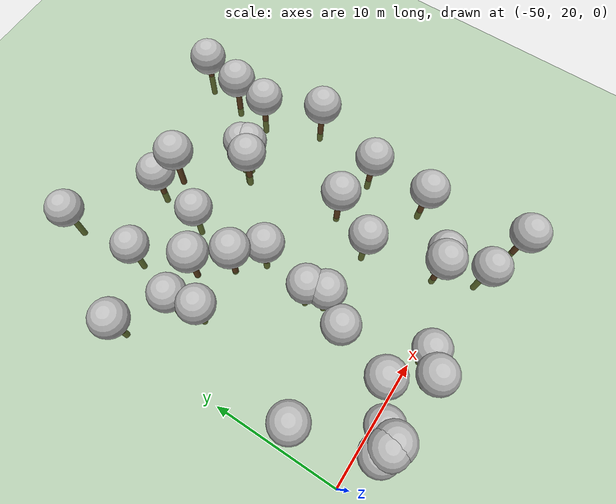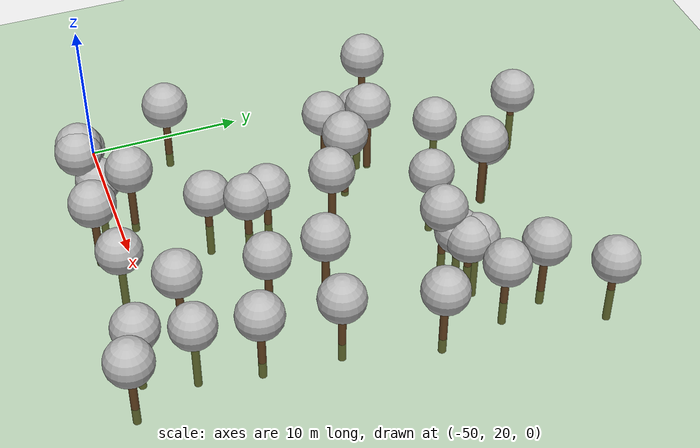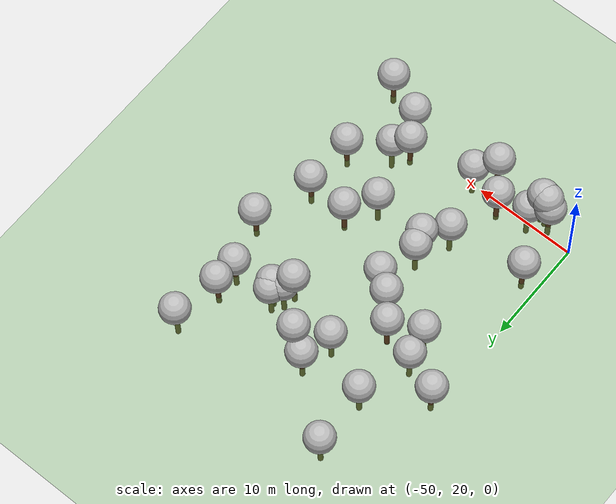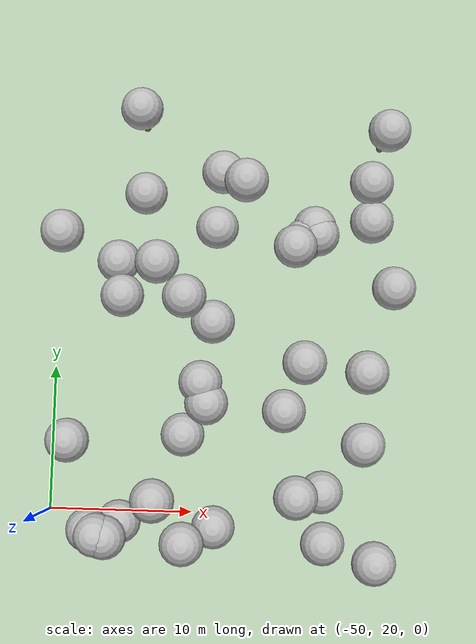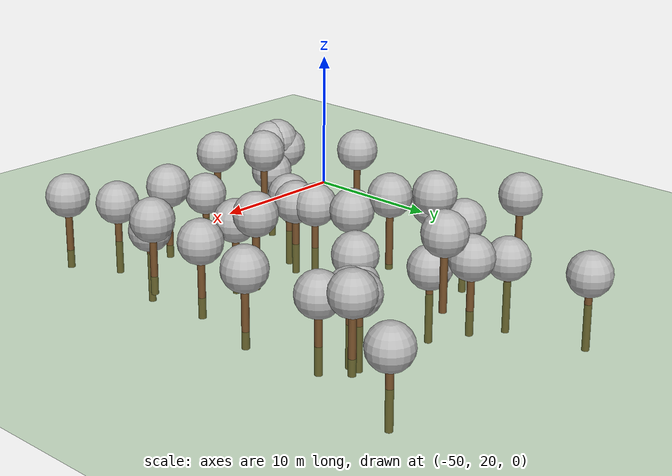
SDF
<sdf version="1.5">
 <world name="default">
  <model name="tree_simple493">
   <static>1</static>
   <link name="link">
    <pose>0 0 0.1 0 -0 0</pose>
    <collision name="collision_trunk">
     <pose>0 0 2 0 -0 0</pose>
     <geometry><cylinder><radius>0.25</radius><length>4</length></cylinder></geometry>
    </collision>
    <collision name="collision_treetop">
     <pose>0 0 5.2 0 -0 0</pose>
     <geometry><sphere><radius>1.5</radius></sphere></geometry>
    </collision>
    <visual name="trunk">
     <pose>0 0 2 0 -0 0</pose>
     <geometry><cylinder><radius>0.25</radius><length>4</length></cylinder></geometry>
     <material>
      <script>
       <uri>model://tree_simple/scripts</uri>
       <uri>model://tree_simple/materials/textures</uri>
       <name>TreeSimple/Trunk</name>
      </script>
     </material>
    </visual>
    <visual name="treetop">
     <pose>0 0 5.2 0 -0 0</pose>
     <geometry><sphere><radius>1.5</radius></sphere></geometry>
     <material>
      <script>
       <uri>model://tree_simple/scripts</uri>
       <uri>model://tree_simple/materials/textures</uri>
       <name>TreeSimple/Treetop</name>
      </script>
     </material>
    </visual>
   </link>
   <pose>-30.9686104206 18.3944298941 -2.510078814309051 0 -0 0</pose>
  </model>
  <model name="tree_simple489">
   <static>1</static>
   <link name="link">
    <pose>0 0 0.1 0 -0 0</pose>
    <collision name="collision_trunk">
     <pose>0 0 2 0 -0 0</pose>
     <geometry><cylinder><radius>0.25</radius><length>4</length></cylinder></geometry>
    </collision>
    <collision name="collision_treetop">
     <pose>0 0 5.2 0 -0 0</pose>
     <geometry><sphere><radius>1.5</radius></sphere></geometry>
    </collision>
    <visual name="trunk">
     <pose>0 0 2 0 -0 0</pose>
     <geometry><cylinder><radius>0.25</radius><length>4</length></cylinder></geometry>
     <material>
      <script>
       <uri>model://tree_simple/scripts</uri>
       <uri>model://tree_simple/materials/textures</uri>
       <name>TreeSimple/Trunk</name>
      </script>
     </material>
    </visual>
    <visual name="treetop">
     <pose>0 0 5.2 0 -0 0</pose>
     <geometry><sphere><radius>1.5</radius></sphere></geometry>
     <material>
      <script>
       <uri>model://tree_simple/scripts</uri>
       <uri>model://tree_simple/materials/textures</uri>
       <name>TreeSimple/Treetop</name>
      </script>
     </material>
    </visual>
   </link>
   <pose>-32.6634579524 39.3278172931 -3.138873466383935 0 -0 0</pose>
  </model>
  <model name="tree_simple482">
   <static>1</static>
   <link name="link">
    <pose>0 0 0.1 0 -0 0</pose>
    <collision name="collision_trunk">
     <pose>0 0 2 0 -0 0</pose>
     <geometry><cylinder><radius>0.25</radius><length>4</length></cylinder></geometry>
    </collision>
    <collision name="collision_treetop">
     <pose>0 0 5.2 0 -0 0</pose>
     <geometry><sphere><radius>1.5</radius></sphere></geometry>
    </collision>
    <visual name="trunk">
     <pose>0 0 2 0 -0 0</pose>
     <geometry><cylinder><radius>0.25</radius><length>4</length></cylinder></geometry>
     <material>
      <script>
       <uri>model://tree_simple/scripts</uri>
       <uri>model://tree_simple/materials/textures</uri>
       <name>TreeSimple/Trunk</name>
      </script>
     </material>
    </visual>
    <visual name="treetop">
     <pose>0 0 5.2 0 -0 0</pose>
     <geometry><sphere><radius>1.5</radius></sphere></geometry>
     <material>
      <script>
       <uri>model://tree_simple/scripts</uri>
       <uri>model://tree_simple/materials/textures</uri>
       <name>TreeSimple/Treetop</name>
      </script>
     </material>
    </visual>
   </link>
   <pose>-31.7137183406 39.6850484597 -3.1111508047833083 0 -0 0</pose>
  </model>
  <model name="tree_simple476">
   <static>1</static>
   <link name="link">
    <pose>0 0 0.1 0 -0 0</pose>
    <collision name="collision_trunk">
     <pose>0 0 2 0 -0 0</pose>
     <geometry><cylinder><radius>0.25</radius><length>4</length></cylinder></geometry>
    </collision>
    <collision name="collision_treetop">
     <pose>0 0 5.2 0 -0 0</pose>
     <geometry><sphere><radius>1.5</radius></sphere></geometry>
    </collision>
    <visual name="trunk">
     <pose>0 0 2 0 -0 0</pose>
     <geometry><cylinder><radius>0.25</radius><length>4</length></cylinder></geometry>
     <material>
      <script>
       <uri>model://tree_simple/scripts</uri>
       <uri>model://tree_simple/materials/textures</uri>
       <name>TreeSimple/Trunk</name>
      </script>
     </material>
    </visual>
    <visual name="treetop">
     <pose>0 0 5.2 0 -0 0</pose>
     <geometry><sphere><radius>1.5</radius></sphere></geometry>
     <material>
      <script>
       <uri>model://tree_simple/scripts</uri>
       <uri>model://tree_simple/materials/textures</uri>
       <name>TreeSimple/Treetop</name>
      </script>
     </material>
    </visual>
   </link>
   <pose>-40.490555579 18.243153787 -1.0676930194325198 0 -0 0</pose>
  </model>
  <model name="tree_simple474">
   <static>1</static>
   <link name="link">
    <pose>0 0 0.1 0 -0 0</pose>
    <collision name="collision_trunk">
     <pose>0 0 2 0 -0 0</pose>
     <geometry><cylinder><radius>0.25</radius><length>4</length></cylinder></geometry>
    </collision>
    <collision name="collision_treetop">
     <pose>0 0 5.2 0 -0 0</pose>
     <geometry><sphere><radius>1.5</radius></sphere></geometry>
    </collision>
    <visual name="trunk">
     <pose>0 0 2 0 -0 0</pose>
     <geometry><cylinder><radius>0.25</radius><length>4</length></cylinder></geometry>
     <material>
      <script>
       <uri>model://tree_simple/scripts</uri>
       <uri>model://tree_simple/materials/textures</uri>
       <name>TreeSimple/Trunk</name>
      </script>
     </material>
    </visual>
    <visual name="treetop">
     <pose>0 0 5.2 0 -0 0</pose>
     <geometry><sphere><radius>1.5</radius></sphere></geometry>
     <material>
      <script>
       <uri>model://tree_simple/scripts</uri>
       <uri>model://tree_simple/materials/textures</uri>
       <name>TreeSimple/Treetop</name>
      </script>
     </material>
    </visual>
   </link>
   <pose>-45.5609359524 37.3889677829 -2.8404649783358575 0 -0 0</pose>
  </model>
  <model name="tree_simple470">
   <static>1</static>
   <link name="link">
    <pose>0 0 0.1 0 -0 0</pose>
    <collision name="collision_trunk">
     <pose>0 0 2 0 -0 0</pose>
     <geometry><cylinder><radius>0.25</radius><length>4</length></cylinder></geometry>
    </collision>
    <collision name="collision_treetop">
     <pose>0 0 5.2 0 -0 0</pose>
     <geometry><sphere><radius>1.5</radius></sphere></geometry>
    </collision>
    <visual name="trunk">
     <pose>0 0 2 0 -0 0</pose>
     <geometry><cylinder><radius>0.25</radius><length>4</length></cylinder></geometry>
     <material>
      <script>
       <uri>model://tree_simple/scripts</uri>
       <uri>model://tree_simple/materials/textures</uri>
       <name>TreeSimple/Trunk</name>
      </script>
     </material>
    </visual>
    <visual name="treetop">
     <pose>0 0 5.2 0 -0 0</pose>
     <geometry><sphere><radius>1.5</radius></sphere></geometry>
     <material>
      <script>
       <uri>model://tree_simple/scripts</uri>
       <uri>model://tree_simple/materials/textures</uri>
       <name>TreeSimple/Treetop</name>
      </script>
     </material>
    </visual>
   </link>
   <pose>-42.5418923399 21.0598314505 -0.8151204117895585 0 -0 0</pose>
  </model>
  <model name="tree_simple467">
   <static>1</static>
   <link name="link">
    <pose>0 0 0.1 0 -0 0</pose>
    <collision name="collision_trunk">
     <pose>0 0 2 0 -0 0</pose>
     <geometry><cylinder><radius>0.25</radius><length>4</length></cylinder></geometry>
    </collision>
    <collision name="collision_treetop">
     <pose>0 0 5.2 0 -0 0</pose>
     <geometry><sphere><radius>1.5</radius></sphere></geometry>
    </collision>
    <visual name="trunk">
     <pose>0 0 2 0 -0 0</pose>
     <geometry><cylinder><radius>0.25</radius><length>4</length></cylinder></geometry>
     <material>
      <script>
       <uri>model://tree_simple/scripts</uri>
       <uri>model://tree_simple/materials/textures</uri>
       <name>TreeSimple/Trunk</name>
      </script>
     </material>
    </visual>
    <visual name="treetop">
     <pose>0 0 5.2 0 -0 0</pose>
     <geometry><sphere><radius>1.5</radius></sphere></geometry>
     <material>
      <script>
       <uri>model://tree_simple/scripts</uri>
       <uri>model://tree_simple/materials/textures</uri>
       <name>TreeSimple/Treetop</name>
      </script>
     </material>
    </visual>
   </link>
   <pose>-38.4435588212 19.1731926836 -3.536207887272826 0 -0 0</pose>
  </model>
  <model name="tree_simple462">
   <static>1</static>
   <link name="link">
    <pose>0 0 0.1 0 -0 0</pose>
    <collision name="collision_trunk">
     <pose>0 0 2 0 -0 0</pose>
     <geometry><cylinder><radius>0.25</radius><length>4</length></cylinder></geometry>
    </collision>
    <collision name="collision_treetop">
     <pose>0 0 5.2 0 -0 0</pose>
     <geometry><sphere><radius>1.5</radius></sphere></geometry>
    </collision>
    <visual name="trunk">
     <pose>0 0 2 0 -0 0</pose>
     <geometry><cylinder><radius>0.25</radius><length>4</length></cylinder></geometry>
     <material>
      <script>
       <uri>model://tree_simple/scripts</uri>
       <uri>model://tree_simple/materials/textures</uri>
       <name>TreeSimple/Trunk</name>
      </script>
     </material>
    </visual>
    <visual name="treetop">
     <pose>0 0 5.2 0 -0 0</pose>
     <geometry><sphere><radius>1.5</radius></sphere></geometry>
     <material>
      <script>
       <uri>model://tree_simple/scripts</uri>
       <uri>model://tree_simple/materials/textures</uri>
       <name>TreeSimple/Treetop</name>
      </script>
     </material>
    </visual>
   </link>
   <pose>-33.3479265171 38.6010387018 -1.5706608682224137 0 -0 0</pose>
  </model>
  <model name="tree_simple440">
   <static>1</static>
   <link name="link">
    <pose>0 0 0.1 0 -0 0</pose>
    <collision name="collision_trunk">
     <pose>0 0 2 0 -0 0</pose>
     <geometry><cylinder><radius>0.25</radius><length>4</length></cylinder></geometry>
    </collision>
    <collision name="collision_treetop">
     <pose>0 0 5.2 0 -0 0</pose>
     <geometry><sphere><radius>1.5</radius></sphere></geometry>
    </collision>
    <visual name="trunk">
     <pose>0 0 2 0 -0 0</pose>
     <geometry><cylinder><radius>0.25</radius><length>4</length></cylinder></geometry>
     <material>
      <script>
       <uri>model://tree_simple/scripts</uri>
       <uri>model://tree_simple/materials/textures</uri>
       <name>TreeSimple/Trunk</name>
      </script>
     </material>
    </visual>
    <visual name="treetop">
     <pose>0 0 5.2 0 -0 0</pose>
     <geometry><sphere><radius>1.5</radius></sphere></geometry>
     <material>
      <script>
       <uri>model://tree_simple/scripts</uri>
       <uri>model://tree_simple/materials/textures</uri>
       <name>TreeSimple/Treetop</name>
      </script>
     </material>
    </visual>
   </link>
   <pose>-31.0139863597 21.7755311208 -3.6890715528366615 0 -0 0</pose>
  </model>
  <model name="tree_simple420">
   <static>1</static>
   <link name="link">
    <pose>0 0 0.1 0 -0 0</pose>
    <collision name="collision_trunk">
     <pose>0 0 2 0 -0 0</pose>
     <geometry><cylinder><radius>0.25</radius><length>4</length></cylinder></geometry>
    </collision>
    <collision name="collision_treetop">
     <pose>0 0 5.2 0 -0 0</pose>
     <geometry><sphere><radius>1.5</radius></sphere></geometry>
    </collision>
    <visual name="trunk">
     <pose>0 0 2 0 -0 0</pose>
     <geometry><cylinder><radius>0.25</radius><length>4</length></cylinder></geometry>
     <material>
      <script>
       <uri>model://tree_simple/scripts</uri>
       <uri>model://tree_simple/materials/textures</uri>
       <name>TreeSimple/Trunk</name>
      </script>
     </material>
    </visual>
    <visual name="treetop">
     <pose>0 0 5.2 0 -0 0</pose>
     <geometry><sphere><radius>1.5</radius></sphere></geometry>
     <material>
      <script>
       <uri>model://tree_simple/scripts</uri>
       <uri>model://tree_simple/materials/textures</uri>
       <name>TreeSimple/Treetop</name>
      </script>
     </material>
    </visual>
   </link>
   <pose>-46.8738530937 18.9140158148 -1.978129869869826 0 -0 0</pose>
  </model>
  <model name="tree_simple410">
   <static>1</static>
   <link name="link">
    <pose>0 0 0.1 0 -0 0</pose>
    <collision name="collision_trunk">
     <pose>0 0 2 0 -0 0</pose>
     <geometry><cylinder><radius>0.25</radius><length>4</length></cylinder></geometry>
    </collision>
    <collision name="collision_treetop">
     <pose>0 0 5.2 0 -0 0</pose>
     <geometry><sphere><radius>1.5</radius></sphere></geometry>
    </collision>
    <visual name="trunk">
     <pose>0 0 2 0 -0 0</pose>
     <geometry><cylinder><radius>0.25</radius><length>4</length></cylinder></geometry>
     <material>
      <script>
       <uri>model://tree_simple/scripts</uri>
       <uri>model://tree_simple/materials/textures</uri>
       <name>TreeSimple/Trunk</name>
      </script>
     </material>
    </visual>
    <visual name="treetop">
     <pose>0 0 5.2 0 -0 0</pose>
     <geometry><sphere><radius>1.5</radius></sphere></geometry>
     <material>
      <script>
       <uri>model://tree_simple/scripts</uri>
       <uri>model://tree_simple/materials/textures</uri>
       <name>TreeSimple/Treetop</name>
      </script>
     </material>
    </visual>
   </link>
   <pose>-31.9347087499 40.2537422087 -3.2331510362041413 0 -0 0</pose>
  </model>
  <model name="tree_simple358">
   <static>1</static>
   <link name="link">
    <pose>0 0 0.1 0 -0 0</pose>
    <collision name="collision_trunk">
     <pose>0 0 2 0 -0 0</pose>
     <geometry><cylinder><radius>0.25</radius><length>4</length></cylinder></geometry>
    </collision>
    <collision name="collision_treetop">
     <pose>0 0 5.2 0 -0 0</pose>
     <geometry><sphere><radius>1.5</radius></sphere></geometry>
    </collision>
    <visual name="trunk">
     <pose>0 0 2 0 -0 0</pose>
     <geometry><cylinder><radius>0.25</radius><length>4</length></cylinder></geometry>
     <material>
      <script>
       <uri>model://tree_simple/scripts</uri>
       <uri>model://tree_simple/materials/textures</uri>
       <name>TreeSimple/Trunk</name>
      </script>
     </material>
    </visual>
    <visual name="treetop">
     <pose>0 0 5.2 0 -0 0</pose>
     <geometry><sphere><radius>1.5</radius></sphere></geometry>
     <material>
      <script>
       <uri>model://tree_simple/scripts</uri>
       <uri>model://tree_simple/materials/textures</uri>
       <name>TreeSimple/Treetop</name>
      </script>
     </material>
    </visual>
   </link>
   <pose>-28.1059387966 40.529489556 -2.030022720326742 0 -0 0</pose>
  </model>
  <model name="tree_simple351">
   <static>1</static>
   <link name="link">
    <pose>0 0 0.1 0 -0 0</pose>
    <collision name="collision_trunk">
     <pose>0 0 2 0 -0 0</pose>
     <geometry><cylinder><radius>0.25</radius><length>4</length></cylinder></geometry>
    </collision>
    <collision name="collision_treetop">
     <pose>0 0 5.2 0 -0 0</pose>
     <geometry><sphere><radius>1.5</radius></sphere></geometry>
    </collision>
    <visual name="trunk">
     <pose>0 0 2 0 -0 0</pose>
     <geometry><cylinder><radius>0.25</radius><length>4</length></cylinder></geometry>
     <material>
      <script>
       <uri>model://tree_simple/scripts</uri>
       <uri>model://tree_simple/materials/textures</uri>
       <name>TreeSimple/Trunk</name>
      </script>
     </material>
    </visual>
    <visual name="treetop">
     <pose>0 0 5.2 0 -0 0</pose>
     <geometry><sphere><radius>1.5</radius></sphere></geometry>
     <material>
      <script>
       <uri>model://tree_simple/scripts</uri>
       <uri>model://tree_simple/materials/textures</uri>
       <name>TreeSimple/Treetop</name>
      </script>
     </material>
    </visual>
   </link>
   <pose>-28.4628783032 25.1782097003 -1.4134834269605965 0 -0 0</pose>
  </model>
  <model name="tree_simple336">
   <static>1</static>
   <link name="link">
    <pose>0 0 0.1 0 -0 0</pose>
    <collision name="collision_trunk">
     <pose>0 0 2 0 -0 0</pose>
     <geometry><cylinder><radius>0.25</radius><length>4</length></cylinder></geometry>
    </collision>
    <collision name="collision_treetop">
     <pose>0 0 5.2 0 -0 0</pose>
     <geometry><sphere><radius>1.5</radius></sphere></geometry>
    </collision>
    <visual name="trunk">
     <pose>0 0 2 0 -0 0</pose>
     <geometry><cylinder><radius>0.25</radius><length>4</length></cylinder></geometry>
     <material>
      <script>
       <uri>model://tree_simple/scripts</uri>
       <uri>model://tree_simple/materials/textures</uri>
       <name>TreeSimple/Trunk</name>
      </script>
     </material>
    </visual>
    <visual name="treetop">
     <pose>0 0 5.2 0 -0 0</pose>
     <geometry><sphere><radius>1.5</radius></sphere></geometry>
     <material>
      <script>
       <uri>model://tree_simple/scripts</uri>
       <uri>model://tree_simple/materials/textures</uri>
       <name>TreeSimple/Treetop</name>
      </script>
     </material>
    </visual>
   </link>
   <pose>-43.9020074738 42.4187815875 -3.774611735931237 0 -0 0</pose>
  </model>
  <model name="tree_simple331">
   <static>1</static>
   <link name="link">
    <pose>0 0 0.1 0 -0 0</pose>
    <collision name="collision_trunk">
     <pose>0 0 2 0 -0 0</pose>
     <geometry><cylinder><radius>0.25</radius><length>4</length></cylinder></geometry>
    </collision>
    <collision name="collision_treetop">
     <pose>0 0 5.2 0 -0 0</pose>
     <geometry><sphere><radius>1.5</radius></sphere></geometry>
    </collision>
    <visual name="trunk">
     <pose>0 0 2 0 -0 0</pose>
     <geometry><cylinder><radius>0.25</radius><length>4</length></cylinder></geometry>
     <material>
      <script>
       <uri>model://tree_simple/scripts</uri>
       <uri>model://tree_simple/materials/textures</uri>
       <name>TreeSimple/Trunk</name>
      </script>
     </material>
    </visual>
    <visual name="treetop">
     <pose>0 0 5.2 0 -0 0</pose>
     <geometry><sphere><radius>1.5</radius></sphere></geometry>
     <material>
      <script>
       <uri>model://tree_simple/scripts</uri>
       <uri>model://tree_simple/materials/textures</uri>
       <name>TreeSimple/Treetop</name>
      </script>
     </material>
    </visual>
   </link>
   <pose>-40.8341940448 34.8238319948 -0.49800030425219033 0 -0 0</pose>
  </model>
  <model name="tree_simple319">
   <static>1</static>
   <link name="link">
    <pose>0 0 0.1 0 -0 0</pose>
    <collision name="collision_trunk">
     <pose>0 0 2 0 -0 0</pose>
     <geometry><cylinder><radius>0.25</radius><length>4</length></cylinder></geometry>
    </collision>
    <collision name="collision_treetop">
     <pose>0 0 5.2 0 -0 0</pose>
     <geometry><sphere><radius>1.5</radius></sphere></geometry>
    </collision>
    <visual name="trunk">
     <pose>0 0 2 0 -0 0</pose>
     <geometry><cylinder><radius>0.25</radius><length>4</length></cylinder></geometry>
     <material>
      <script>
       <uri>model://tree_simple/scripts</uri>
       <uri>model://tree_simple/materials/textures</uri>
       <name>TreeSimple/Trunk</name>
      </script>
     </material>
    </visual>
    <visual name="treetop">
     <pose>0 0 5.2 0 -0 0</pose>
     <geometry><sphere><radius>1.5</radius></sphere></geometry>
     <material>
      <script>
       <uri>model://tree_simple/scripts</uri>
       <uri>model://tree_simple/materials/textures</uri>
       <name>TreeSimple/Treetop</name>
      </script>
     </material>
    </visual>
   </link>
   <pose>-33.8227496689 27.309967617 -2.3372359769945046 0 -0 0</pose>
  </model>
  <model name="tree_simple311">
   <static>1</static>
   <link name="link">
    <pose>0 0 0.1 0 -0 0</pose>
    <collision name="collision_trunk">
     <pose>0 0 2 0 -0 0</pose>
     <geometry><cylinder><radius>0.25</radius><length>4</length></cylinder></geometry>
    </collision>
    <collision name="collision_treetop">
     <pose>0 0 5.2 0 -0 0</pose>
     <geometry><sphere><radius>1.5</radius></sphere></geometry>
    </collision>
    <visual name="trunk">
     <pose>0 0 2 0 -0 0</pose>
     <geometry><cylinder><radius>0.25</radius><length>4</length></cylinder></geometry>
     <material>
      <script>
       <uri>model://tree_simple/scripts</uri>
       <uri>model://tree_simple/materials/textures</uri>
       <name>TreeSimple/Trunk</name>
      </script>
     </material>
    </visual>
    <visual name="treetop">
     <pose>0 0 5.2 0 -0 0</pose>
     <geometry><sphere><radius>1.5</radius></sphere></geometry>
     <material>
      <script>
       <uri>model://tree_simple/scripts</uri>
       <uri>model://tree_simple/materials/textures</uri>
       <name>TreeSimple/Treetop</name>
      </script>
     </material>
    </visual>
   </link>
   <pose>-49.3857645653 39.1709388153 -1.503829311496968 0 -0 0</pose>
  </model>
  <model name="tree_simple291">
   <static>1</static>
   <link name="link">
    <pose>0 0 0.1 0 -0 0</pose>
    <collision name="collision_trunk">
     <pose>0 0 2 0 -0 0</pose>
     <geometry><cylinder><radius>0.25</radius><length>4</length></cylinder></geometry>
    </collision>
    <collision name="collision_treetop">
     <pose>0 0 5.2 0 -0 0</pose>
     <geometry><sphere><radius>1.5</radius></sphere></geometry>
    </collision>
    <visual name="trunk">
     <pose>0 0 2 0 -0 0</pose>
     <geometry><cylinder><radius>0.25</radius><length>4</length></cylinder></geometry>
     <material>
      <script>
       <uri>model://tree_simple/scripts</uri>
       <uri>model://tree_simple/materials/textures</uri>
       <name>TreeSimple/Trunk</name>
      </script>
     </material>
    </visual>
    <visual name="treetop">
     <pose>0 0 5.2 0 -0 0</pose>
     <geometry><sphere><radius>1.5</radius></sphere></geometry>
     <material>
      <script>
       <uri>model://tree_simple/scripts</uri>
       <uri>model://tree_simple/materials/textures</uri>
       <name>TreeSimple/Treetop</name>
      </script>
     </material>
    </visual>
   </link>
   <pose>-38.780558868 40.0860126223 -3.559691316589827 0 -0 0</pose>
  </model>
  <model name="tree_simple286">
   <static>1</static>
   <link name="link">
    <pose>0 0 0.1 0 -0 0</pose>
    <collision name="collision_trunk">
     <pose>0 0 2 0 -0 0</pose>
     <geometry><cylinder><radius>0.25</radius><length>4</length></cylinder></geometry>
    </collision>
    <collision name="collision_treetop">
     <pose>0 0 5.2 0 -0 0</pose>
     <geometry><sphere><radius>1.5</radius></sphere></geometry>
    </collision>
    <visual name="trunk">
     <pose>0 0 2 0 -0 0</pose>
     <geometry><cylinder><radius>0.25</radius><length>4</length></cylinder></geometry>
     <material>
      <script>
       <uri>model://tree_simple/scripts</uri>
       <uri>model://tree_simple/materials/textures</uri>
       <name>TreeSimple/Trunk</name>
      </script>
     </material>
    </visual>
    <visual name="treetop">
     <pose>0 0 5.2 0 -0 0</pose>
     <geometry><sphere><radius>1.5</radius></sphere></geometry>
     <material>
      <script>
       <uri>model://tree_simple/scripts</uri>
       <uri>model://tree_simple/materials/textures</uri>
       <name>TreeSimple/Treetop</name>
      </script>
     </material>
    </visual>
   </link>
   <pose>-48.4343960976 24.9011596552 -1.2443681543550211 0 -0 0</pose>
  </model>
  <model name="tree_simple264">
   <static>1</static>
   <link name="link">
    <pose>0 0 0.1 0 -0 0</pose>
    <collision name="collision_trunk">
     <pose>0 0 2 0 -0 0</pose>
     <geometry><cylinder><radius>0.25</radius><length>4</length></cylinder></geometry>
    </collision>
    <collision name="collision_treetop">
     <pose>0 0 5.2 0 -0 0</pose>
     <geometry><sphere><radius>1.5</radius></sphere></geometry>
    </collision>
    <visual name="trunk">
     <pose>0 0 2 0 -0 0</pose>
     <geometry><cylinder><radius>0.25</radius><length>4</length></cylinder></geometry>
     <material>
      <script>
       <uri>model://tree_simple/scripts</uri>
       <uri>model://tree_simple/materials/textures</uri>
       <name>TreeSimple/Trunk</name>
      </script>
     </material>
    </visual>
    <visual name="treetop">
     <pose>0 0 5.2 0 -0 0</pose>
     <geometry><sphere><radius>1.5</radius></sphere></geometry>
     <material>
      <script>
       <uri>model://tree_simple/scripts</uri>
       <uri>model://tree_simple/materials/textures</uri>
       <name>TreeSimple/Treetop</name>
      </script>
     </material>
    </visual>
   </link>
   <pose>-26.5960769864 35.8751081016 -1.304830580005368 0 -0 0</pose>
  </model>
  <model name="tree_simple256">
   <static>1</static>
   <link name="link">
    <pose>0 0 0.1 0 -0 0</pose>
    <collision name="collision_trunk">
     <pose>0 0 2 0 -0 0</pose>
     <geometry><cylinder><radius>0.25</radius><length>4</length></cylinder></geometry>
    </collision>
    <collision name="collision_treetop">
     <pose>0 0 5.2 0 -0 0</pose>
     <geometry><sphere><radius>1.5</radius></sphere></geometry>
    </collision>
    <visual name="trunk">
     <pose>0 0 2 0 -0 0</pose>
     <geometry><cylinder><radius>0.25</radius><length>4</length></cylinder></geometry>
     <material>
      <script>
       <uri>model://tree_simple/scripts</uri>
       <uri>model://tree_simple/materials/textures</uri>
       <name>TreeSimple/Trunk</name>
      </script>
     </material>
    </visual>
    <visual name="treetop">
     <pose>0 0 5.2 0 -0 0</pose>
     <geometry><sphere><radius>1.5</radius></sphere></geometry>
     <material>
      <script>
       <uri>model://tree_simple/scripts</uri>
       <uri>model://tree_simple/materials/textures</uri>
       <name>TreeSimple/Treetop</name>
      </script>
     </material>
    </visual>
   </link>
   <pose>-38.4325558623 43.6568851864 -1.8209873454554353 0 -0 0</pose>
  </model>
  <model name="tree_simple247">
   <static>1</static>
   <link name="link">
    <pose>0 0 0.1 0 -0 0</pose>
    <collision name="collision_trunk">
     <pose>0 0 2 0 -0 0</pose>
     <geometry><cylinder><radius>0.25</radius><length>4</length></cylinder></geometry>
    </collision>
    <collision name="collision_treetop">
     <pose>0 0 5.2 0 -0 0</pose>
     <geometry><sphere><radius>1.5</radius></sphere></geometry>
    </collision>
    <visual name="trunk">
     <pose>0 0 2 0 -0 0</pose>
     <geometry><cylinder><radius>0.25</radius><length>4</length></cylinder></geometry>
     <material>
      <script>
       <uri>model://tree_simple/scripts</uri>
       <uri>model://tree_simple/materials/textures</uri>
       <name>TreeSimple/Trunk</name>
      </script>
     </material>
    </visual>
    <visual name="treetop">
     <pose>0 0 5.2 0 -0 0</pose>
     <geometry><sphere><radius>1.5</radius></sphere></geometry>
     <material>
      <script>
       <uri>model://tree_simple/scripts</uri>
       <uri>model://tree_simple/materials/textures</uri>
       <name>TreeSimple/Treetop</name>
      </script>
     </material>
    </visual>
   </link>
   <pose>-44.3832388131 48.3955182604 -3.3230877316165124 0 -0 0</pose>
  </model>
  <model name="tree_simple236">
   <static>1</static>
   <link name="link">
    <pose>0 0 0.1 0 -0 0</pose>
    <collision name="collision_trunk">
     <pose>0 0 2 0 -0 0</pose>
     <geometry><cylinder><radius>0.25</radius><length>4</length></cylinder></geometry>
    </collision>
    <collision name="collision_treetop">
     <pose>0 0 5.2 0 -0 0</pose>
     <geometry><sphere><radius>1.5</radius></sphere></geometry>
    </collision>
    <visual name="trunk">
     <pose>0 0 2 0 -0 0</pose>
     <geometry><cylinder><radius>0.25</radius><length>4</length></cylinder></geometry>
     <material>
      <script>
       <uri>model://tree_simple/scripts</uri>
       <uri>model://tree_simple/materials/textures</uri>
       <name>TreeSimple/Trunk</name>
      </script>
     </material>
    </visual>
    <visual name="treetop">
     <pose>0 0 5.2 0 -0 0</pose>
     <geometry><sphere><radius>1.5</radius></sphere></geometry>
     <material>
      <script>
       <uri>model://tree_simple/scripts</uri>
       <uri>model://tree_simple/materials/textures</uri>
       <name>TreeSimple/Treetop</name>
      </script>
     </material>
    </visual>
   </link>
   <pose>-28.2556560036 43.088579588 -1.267264121943708 0 -0 0</pose>
  </model>
  <model name="tree_simple208">
   <static>1</static>
   <link name="link">
    <pose>0 0 0.1 0 -0 0</pose>
    <collision name="collision_trunk">
     <pose>0 0 2 0 -0 0</pose>
     <geometry><cylinder><radius>0.25</radius><length>4</length></cylinder></geometry>
    </collision>
    <collision name="collision_treetop">
     <pose>0 0 5.2 0 -0 0</pose>
     <geometry><sphere><radius>1.5</radius></sphere></geometry>
    </collision>
    <visual name="trunk">
     <pose>0 0 2 0 -0 0</pose>
     <geometry><cylinder><radius>0.25</radius><length>4</length></cylinder></geometry>
     <material>
      <script>
       <uri>model://tree_simple/scripts</uri>
       <uri>model://tree_simple/materials/textures</uri>
       <name>TreeSimple/Trunk</name>
      </script>
     </material>
    </visual>
    <visual name="treetop">
     <pose>0 0 5.2 0 -0 0</pose>
     <geometry><sphere><radius>1.5</radius></sphere></geometry>
     <material>
      <script>
       <uri>model://tree_simple/scripts</uri>
       <uri>model://tree_simple/materials/textures</uri>
       <name>TreeSimple/Treetop</name>
      </script>
     </material>
    </visual>
   </link>
   <pose>-39.1560557195 27.6775865092 -2.2789714434614776 0 -0 0</pose>
  </model>
  <model name="tree_simple205">
   <static>1</static>
   <link name="link">
    <pose>0 0 0.1 0 -0 0</pose>
    <collision name="collision_trunk">
     <pose>0 0 2 0 -0 0</pose>
     <geometry><cylinder><radius>0.25</radius><length>4</length></cylinder></geometry>
    </collision>
    <collision name="collision_treetop">
     <pose>0 0 5.2 0 -0 0</pose>
     <geometry><sphere><radius>1.5</radius></sphere></geometry>
    </collision>
    <visual name="trunk">
     <pose>0 0 2 0 -0 0</pose>
     <geometry><cylinder><radius>0.25</radius><length>4</length></cylinder></geometry>
     <material>
      <script>
       <uri>model://tree_simple/scripts</uri>
       <uri>model://tree_simple/materials/textures</uri>
       <name>TreeSimple/Trunk</name>
      </script>
     </material>
    </visual>
    <visual name="treetop">
     <pose>0 0 5.2 0 -0 0</pose>
     <geometry><sphere><radius>1.5</radius></sphere></geometry>
     <material>
      <script>
       <uri>model://tree_simple/scripts</uri>
       <uri>model://tree_simple/materials/textures</uri>
       <name>TreeSimple/Treetop</name>
      </script>
     </material>
    </visual>
   </link>
   <pose>-28.261168219 30.0880019851 -1.5729478347351251 0 -0 0</pose>
  </model>
  <model name="tree_simple132">
   <static>1</static>
   <link name="link">
    <pose>0 0 0.1 0 -0 0</pose>
    <collision name="collision_trunk">
     <pose>0 0 2 0 -0 0</pose>
     <geometry><cylinder><radius>0.25</radius><length>4</length></cylinder></geometry>
    </collision>
    <collision name="collision_treetop">
     <pose>0 0 5.2 0 -0 0</pose>
     <geometry><sphere><radius>1.5</radius></sphere></geometry>
    </collision>
    <visual name="trunk">
     <pose>0 0 2 0 -0 0</pose>
     <geometry><cylinder><radius>0.25</radius><length>4</length></cylinder></geometry>
     <material>
      <script>
       <uri>model://tree_simple/scripts</uri>
       <uri>model://tree_simple/materials/textures</uri>
       <name>TreeSimple/Trunk</name>
      </script>
     </material>
    </visual>
    <visual name="treetop">
     <pose>0 0 5.2 0 -0 0</pose>
     <geometry><sphere><radius>1.5</radius></sphere></geometry>
     <material>
      <script>
       <uri>model://tree_simple/scripts</uri>
       <uri>model://tree_simple/materials/textures</uri>
       <name>TreeSimple/Treetop</name>
      </script>
     </material>
    </visual>
   </link>
   <pose>-26.8565746681 47.2141464963 -2.8218444436959285 0 -0 0</pose>
  </model>
  <model name="tree_simple127">
   <static>1</static>
   <link name="link">
    <pose>0 0 0.1 0 -0 0</pose>
    <collision name="collision_trunk">
     <pose>0 0 2 0 -0 0</pose>
     <geometry><cylinder><radius>0.25</radius><length>4</length></cylinder></geometry>
    </collision>
    <collision name="collision_treetop">
     <pose>0 0 5.2 0 -0 0</pose>
     <geometry><sphere><radius>1.5</radius></sphere></geometry>
    </collision>
    <visual name="trunk">
     <pose>0 0 2 0 -0 0</pose>
     <geometry><cylinder><radius>0.25</radius><length>4</length></cylinder></geometry>
     <material>
      <script>
       <uri>model://tree_simple/scripts</uri>
       <uri>model://tree_simple/materials/textures</uri>
       <name>TreeSimple/Trunk</name>
      </script>
     </material>
    </visual>
    <visual name="treetop">
     <pose>0 0 5.2 0 -0 0</pose>
     <geometry><sphere><radius>1.5</radius></sphere></geometry>
     <material>
      <script>
       <uri>model://tree_simple/scripts</uri>
       <uri>model://tree_simple/materials/textures</uri>
       <name>TreeSimple/Treetop</name>
      </script>
     </material>
    </visual>
   </link>
   <pose>-45.7202624904 18.511982554 -1.2829347062882483 0 -0 0</pose>
  </model>
  <model name="tree_simple122">
   <static>1</static>
   <link name="link">
    <pose>0 0 0.1 0 -0 0</pose>
    <collision name="collision_trunk">
     <pose>0 0 2 0 -0 0</pose>
     <geometry><cylinder><radius>0.25</radius><length>4</length></cylinder></geometry>
    </collision>
    <collision name="collision_treetop">
     <pose>0 0 5.2 0 -0 0</pose>
     <geometry><sphere><radius>1.5</radius></sphere></geometry>
    </collision>
    <visual name="trunk">
     <pose>0 0 2 0 -0 0</pose>
     <geometry><cylinder><radius>0.25</radius><length>4</length></cylinder></geometry>
     <material>
      <script>
       <uri>model://tree_simple/scripts</uri>
       <uri>model://tree_simple/materials/textures</uri>
       <name>TreeSimple/Trunk</name>
      </script>
     </material>
    </visual>
    <visual name="treetop">
     <pose>0 0 5.2 0 -0 0</pose>
     <geometry><sphere><radius>1.5</radius></sphere></geometry>
     <material>
      <script>
       <uri>model://tree_simple/scripts</uri>
       <uri>model://tree_simple/materials/textures</uri>
       <name>TreeSimple/Treetop</name>
      </script>
     </material>
    </visual>
   </link>
   <pose>-44.9070413792 19.4157710588 -3.2228187904229473 0 -0 0</pose>
  </model>
  <model name="tree_simple119">
   <static>1</static>
   <link name="link">
    <pose>0 0 0.1 0 -0 0</pose>
    <collision name="collision_trunk">
     <pose>0 0 2 0 -0 0</pose>
     <geometry><cylinder><radius>0.25</radius><length>4</length></cylinder></geometry>
    </collision>
    <collision name="collision_treetop">
     <pose>0 0 5.2 0 -0 0</pose>
     <geometry><sphere><radius>1.5</radius></sphere></geometry>
    </collision>
    <visual name="trunk">
     <pose>0 0 2 0 -0 0</pose>
     <geometry><cylinder><radius>0.25</radius><length>4</length></cylinder></geometry>
     <material>
      <script>
       <uri>model://tree_simple/scripts</uri>
       <uri>model://tree_simple/materials/textures</uri>
       <name>TreeSimple/Trunk</name>
      </script>
     </material>
    </visual>
    <visual name="treetop">
     <pose>0 0 5.2 0 -0 0</pose>
     <geometry><sphere><radius>1.5</radius></sphere></geometry>
     <material>
      <script>
       <uri>model://tree_simple/scripts</uri>
       <uri>model://tree_simple/materials/textures</uri>
       <name>TreeSimple/Treetop</name>
      </script>
     </material>
    </visual>
   </link>
   <pose>-27.5998375986 17.3076325805 -1.432673313689961 0 -0 0</pose>
  </model>
  <model name="tree_simple117">
   <static>1</static>
   <link name="link">
    <pose>0 0 0.1 0 -0 0</pose>
    <collision name="collision_trunk">
     <pose>0 0 2 0 -0 0</pose>
     <geometry><cylinder><radius>0.25</radius><length>4</length></cylinder></geometry>
    </collision>
    <collision name="collision_treetop">
     <pose>0 0 5.2 0 -0 0</pose>
     <geometry><sphere><radius>1.5</radius></sphere></geometry>
    </collision>
    <visual name="trunk">
     <pose>0 0 2 0 -0 0</pose>
     <geometry><cylinder><radius>0.25</radius><length>4</length></cylinder></geometry>
     <material>
      <script>
       <uri>model://tree_simple/scripts</uri>
       <uri>model://tree_simple/materials/textures</uri>
       <name>TreeSimple/Trunk</name>
      </script>
     </material>
    </visual>
    <visual name="treetop">
     <pose>0 0 5.2 0 -0 0</pose>
     <geometry><sphere><radius>1.5</radius></sphere></geometry>
     <material>
      <script>
       <uri>model://tree_simple/scripts</uri>
       <uri>model://tree_simple/materials/textures</uri>
       <name>TreeSimple/Treetop</name>
      </script>
     </material>
    </visual>
   </link>
   <pose>-46.2827238601 18.6501285005 -1.2268369540338626 0 -0 0</pose>
  </model>
  <model name="tree_simple112">
   <static>1</static>
   <link name="link">
    <pose>0 0 0.1 0 -0 0</pose>
    <collision name="collision_trunk">
     <pose>0 0 2 0 -0 0</pose>
     <geometry><cylinder><radius>0.25</radius><length>4</length></cylinder></geometry>
    </collision>
    <collision name="collision_treetop">
     <pose>0 0 5.2 0 -0 0</pose>
     <geometry><sphere><radius>1.5</radius></sphere></geometry>
    </collision>
    <visual name="trunk">
     <pose>0 0 2 0 -0 0</pose>
     <geometry><cylinder><radius>0.25</radius><length>4</length></cylinder></geometry>
     <material>
      <script>
       <uri>model://tree_simple/scripts</uri>
       <uri>model://tree_simple/materials/textures</uri>
       <name>TreeSimple/Trunk</name>
      </script>
     </material>
    </visual>
    <visual name="treetop">
     <pose>0 0 5.2 0 -0 0</pose>
     <geometry><sphere><radius>1.5</radius></sphere></geometry>
     <material>
      <script>
       <uri>model://tree_simple/scripts</uri>
       <uri>model://tree_simple/materials/textures</uri>
       <name>TreeSimple/Treetop</name>
      </script>
     </material>
    </visual>
   </link>
   <pose>-36.862810057 42.7576459823 -0.04454827349958257 0 -0 0</pose>
  </model>
  <model name="tree_simple109">
   <static>1</static>
   <link name="link">
    <pose>0 0 0.1 0 -0 0</pose>
    <collision name="collision_trunk">
     <pose>0 0 2 0 -0 0</pose>
     <geometry><cylinder><radius>0.25</radius><length>4</length></cylinder></geometry>
    </collision>
    <collision name="collision_treetop">
     <pose>0 0 5.2 0 -0 0</pose>
     <geometry><sphere><radius>1.5</radius></sphere></geometry>
    </collision>
    <visual name="trunk">
     <pose>0 0 2 0 -0 0</pose>
     <geometry><cylinder><radius>0.25</radius><length>4</length></cylinder></geometry>
     <material>
      <script>
       <uri>model://tree_simple/scripts</uri>
       <uri>model://tree_simple/materials/textures</uri>
       <name>TreeSimple/Trunk</name>
      </script>
     </material>
    </visual>
    <visual name="treetop">
     <pose>0 0 5.2 0 -0 0</pose>
     <geometry><sphere><radius>1.5</radius></sphere></geometry>
     <material>
      <script>
       <uri>model://tree_simple/scripts</uri>
       <uri>model://tree_simple/materials/textures</uri>
       <name>TreeSimple/Treetop</name>
      </script>
     </material>
    </visual>
   </link>
   <pose>-42.7379400786 37.0728302321 -0.2745421383690825 0 -0 0</pose>
  </model>
  <model name="tree_simple53">
   <static>1</static>
   <link name="link">
    <pose>0 0 0.1 0 -0 0</pose>
    <collision name="collision_trunk">
     <pose>0 0 2 0 -0 0</pose>
     <geometry><cylinder><radius>0.25</radius><length>4</length></cylinder></geometry>
    </collision>
    <collision name="collision_treetop">
     <pose>0 0 5.2 0 -0 0</pose>
     <geometry><sphere><radius>1.5</radius></sphere></geometry>
    </collision>
    <visual name="trunk">
     <pose>0 0 2 0 -0 0</pose>
     <geometry><cylinder><radius>0.25</radius><length>4</length></cylinder></geometry>
     <material>
      <script>
       <uri>model://tree_simple/scripts</uri>
       <uri>model://tree_simple/materials/textures</uri>
       <name>TreeSimple/Trunk</name>
      </script>
     </material>
    </visual>
    <visual name="treetop">
     <pose>0 0 5.2 0 -0 0</pose>
     <geometry><sphere><radius>1.5</radius></sphere></geometry>
     <material>
      <script>
       <uri>model://tree_simple/scripts</uri>
       <uri>model://tree_simple/materials/textures</uri>
       <name>TreeSimple/Treetop</name>
      </script>
     </material>
    </visual>
   </link>
   <pose>-38.8612108818 33.2267374622 -1.4536062210466996 0 -0 0</pose>
  </model>
  <model name="tree_simple43">
   <static>1</static>
   <link name="link">
    <pose>0 0 0.1 0 -0 0</pose>
    <collision name="collision_trunk">
     <pose>0 0 2 0 -0 0</pose>
     <geometry><cylinder><radius>0.25</radius><length>4</length></cylinder></geometry>
    </collision>
    <collision name="collision_treetop">
     <pose>0 0 5.2 0 -0 0</pose>
     <geometry><sphere><radius>1.5</radius></sphere></geometry>
    </collision>
    <visual name="trunk">
     <pose>0 0 2 0 -0 0</pose>
     <geometry><cylinder><radius>0.25</radius><length>4</length></cylinder></geometry>
     <material>
      <script>
       <uri>model://tree_simple/scripts</uri>
       <uri>model://tree_simple/materials/textures</uri>
       <name>TreeSimple/Trunk</name>
      </script>
     </material>
    </visual>
    <visual name="treetop">
     <pose>0 0 5.2 0 -0 0</pose>
     <geometry><sphere><radius>1.5</radius></sphere></geometry>
     <material>
      <script>
       <uri>model://tree_simple/scripts</uri>
       <uri>model://tree_simple/materials/textures</uri>
       <name>TreeSimple/Treetop</name>
      </script>
     </material>
    </visual>
   </link>
   <pose>-32.9489924766 21.5371657104 -1.0350688020979453 0 -0 0</pose>
  </model>
  <model name="tree_simple36">
   <static>1</static>
   <link name="link">
    <pose>0 0 0.1 0 -0 0</pose>
    <collision name="collision_trunk">
     <pose>0 0 2 0 -0 0</pose>
     <geometry><cylinder><radius>0.25</radius><length>4</length></cylinder></geometry>
    </collision>
    <collision name="collision_treetop">
     <pose>0 0 5.2 0 -0 0</pose>
     <geometry><sphere><radius>1.5</radius></sphere></geometry>
    </collision>
    <visual name="trunk">
     <pose>0 0 2 0 -0 0</pose>
     <geometry><cylinder><radius>0.25</radius><length>4</length></cylinder></geometry>
     <material>
      <script>
       <uri>model://tree_simple/scripts</uri>
       <uri>model://tree_simple/materials/textures</uri>
       <name>TreeSimple/Trunk</name>
      </script>
     </material>
    </visual>
    <visual name="treetop">
     <pose>0 0 5.2 0 -0 0</pose>
     <geometry><sphere><radius>1.5</radius></sphere></geometry>
     <material>
      <script>
       <uri>model://tree_simple/scripts</uri>
       <uri>model://tree_simple/materials/textures</uri>
       <name>TreeSimple/Treetop</name>
      </script>
     </material>
    </visual>
   </link>
   <pose>-40.7093037753 25.4885926906 -2.657962467666636 0 -0 0</pose>
  </model>
  <model name="tree_simple34">
   <static>1</static>
   <link name="link">
    <pose>0 0 0.1 0 -0 0</pose>
    <collision name="collision_trunk">
     <pose>0 0 2 0 -0 0</pose>
     <geometry><cylinder><radius>0.25</radius><length>4</length></cylinder></geometry>
    </collision>
    <collision name="collision_treetop">
     <pose>0 0 5.2 0 -0 0</pose>
     <geometry><sphere><radius>1.5</radius></sphere></geometry>
    </collision>
    <visual name="trunk">
     <pose>0 0 2 0 -0 0</pose>
     <geometry><cylinder><radius>0.25</radius><length>4</length></cylinder></geometry>
     <material>
      <script>
       <uri>model://tree_simple/scripts</uri>
       <uri>model://tree_simple/materials/textures</uri>
       <name>TreeSimple/Trunk</name>
      </script>
     </material>
    </visual>
    <visual name="treetop">
     <pose>0 0 5.2 0 -0 0</pose>
     <geometry><sphere><radius>1.5</radius></sphere></geometry>
     <material>
      <script>
       <uri>model://tree_simple/scripts</uri>
       <uri>model://tree_simple/materials/textures</uri>
       <name>TreeSimple/Treetop</name>
      </script>
     </material>
    </visual>
   </link>
   <pose>-32.5861870304 30.5926655905 -0.7454929907906003 0 -0 0</pose>
  </model>
  <model name="tree_simple25">
   <static>1</static>
   <link name="link">
    <pose>0 0 0.1 0 -0 0</pose>
    <collision name="collision_trunk">
     <pose>0 0 2 0 -0 0</pose>
     <geometry><cylinder><radius>0.25</radius><length>4</length></cylinder></geometry>
    </collision>
    <collision name="collision_treetop">
     <pose>0 0 5.2 0 -0 0</pose>
     <geometry><sphere><radius>1.5</radius></sphere></geometry>
    </collision>
    <visual name="trunk">
     <pose>0 0 2 0 -0 0</pose>
     <geometry><cylinder><radius>0.25</radius><length>4</length></cylinder></geometry>
     <material>
      <script>
       <uri>model://tree_simple/scripts</uri>
       <uri>model://tree_simple/materials/textures</uri>
       <name>TreeSimple/Trunk</name>
      </script>
     </material>
    </visual>
    <visual name="treetop">
     <pose>0 0 5.2 0 -0 0</pose>
     <geometry><sphere><radius>1.5</radius></sphere></geometry>
     <material>
      <script>
       <uri>model://tree_simple/scripts</uri>
       <uri>model://tree_simple/materials/textures</uri>
       <name>TreeSimple/Treetop</name>
      </script>
     </material>
    </visual>
   </link>
   <pose>-39.5999688194 29.1164638866 -2.241489767922195 0 -0 0</pose>
  </model>
  <model name="tree_simple7">
   <static>1</static>
   <link name="link">
    <pose>0 0 0.1 0 -0 0</pose>
    <collision name="collision_trunk">
     <pose>0 0 2 0 -0 0</pose>
     <geometry><cylinder><radius>0.25</radius><length>4</length></cylinder></geometry>
    </collision>
    <collision name="collision_treetop">
     <pose>0 0 5.2 0 -0 0</pose>
     <geometry><sphere><radius>1.5</radius></sphere></geometry>
    </collision>
    <visual name="trunk">
     <pose>0 0 2 0 -0 0</pose>
     <geometry><cylinder><radius>0.25</radius><length>4</length></cylinder></geometry>
     <material>
      <script>
       <uri>model://tree_simple/scripts</uri>
       <uri>model://tree_simple/materials/textures</uri>
       <name>TreeSimple/Trunk</name>
      </script>
     </material>
    </visual>
    <visual name="treetop">
     <pose>0 0 5.2 0 -0 0</pose>
     <geometry><sphere><radius>1.5</radius></sphere></geometry>
     <material>
      <script>
       <uri>model://tree_simple/scripts</uri>
       <uri>model://tree_simple/materials/textures</uri>
       <name>TreeSimple/Treetop</name>
      </script>
     </material>
    </visual>
   </link>
   <pose>-45.1752630278 34.9225483382 -2.221512359818611 0 -0 0</pose>
  </model>
  <model name="ground_plane">
   <static>true</static>
   <link name="link">
    <collision name="collision">
     <geometry><plane><normal>0 0 1</normal><size>250 250</size></plane></geometry>
     <surface><friction><ode><mu>1</mu><mu2>1</mu2></ode></friction></surface>
    </collision>
    <visual name="grass">
     <cast_shadows>false</cast_shadows>
     <geometry><plane><normal>0 0 1</normal><size>150 250</size></plane></geometry>
     <material>
      <script><uri>file://media/materials/scripts/Gazebo.material</uri><name>Gazebo/Grass</name></script>
     </material>
    </visual>
   </link>
  </model>
 </world>
</sdf>
